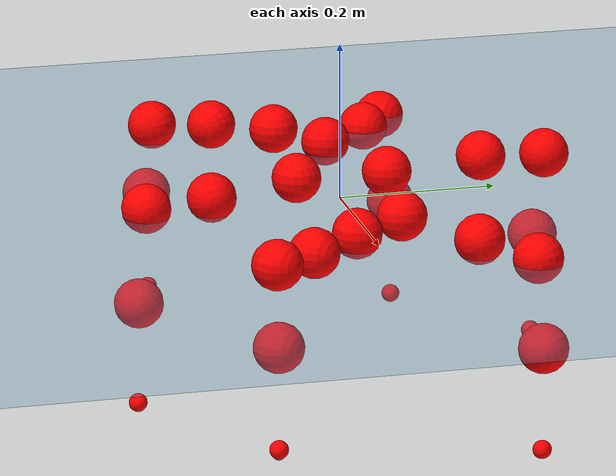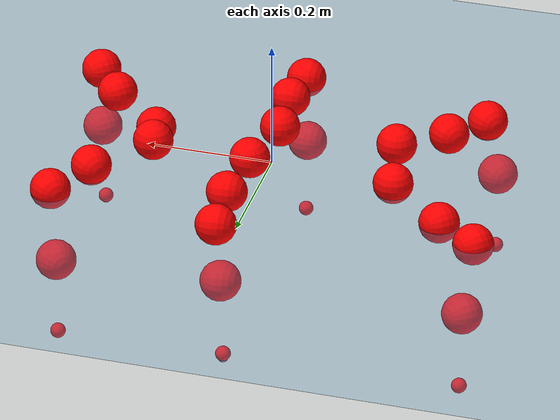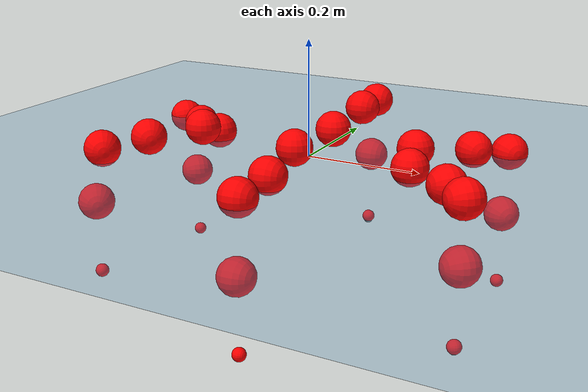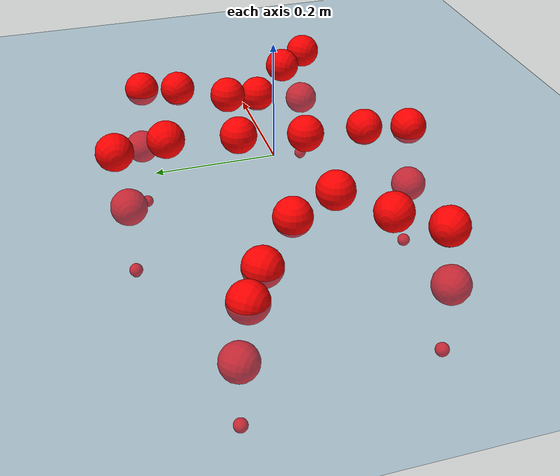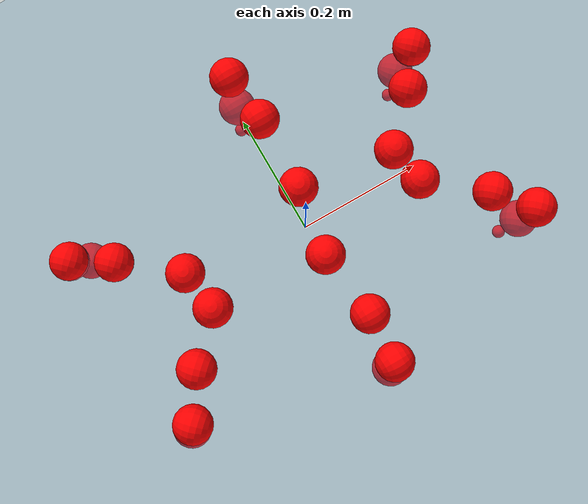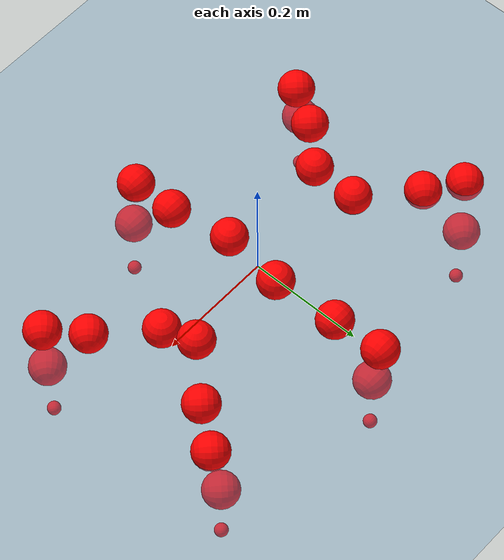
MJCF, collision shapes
<mujoco model="Golem">
  <compiler angle="radian" assetdir="assets" balanceinertia="true" inertiafromgeom="false"/>

  <option timestep="0.005" density="1.2" viscosity="2e-05"/>

  <size nkey="1"/>

  <visual>
    <quality shadowsize="8192"/>
    <map shadowclip="0.5"/>
  </visual>

  <default>
    <default class="/">
      <joint armature="0.01" damping="0.01" frictionloss="0.01"/>
      <geom contype="0" conaffinity="0" group="1" solref="-1000 -80"/>
      <site size="0.01 0.005 0.005" group="5"/>
      <general forcelimited="true" biastype="affine" gainprm="25" biasprm="0 -25 -0.5"/>
      <default class="visual">
        <geom type="mesh" group="2"/>
      </default>
      <default class="collision">
        <geom group="3"/>
      </default>
      <default class="foot">
        <geom size="0.01 0 0" condim="6" group="4" priority="1" solimp="0.015 1 0.01"/>
      </default>
      <default class="reward_collision_sphere">
        <geom group="5" rgba="1 0 0 1"/>
      </default>
    </default>
  </default>

  <asset>
    <texture type="skybox" colorspace="auto" name="//unnamed_texture_0" builtin="gradient" rgb1="0.95 0.95 0.95" rgb2="0.95 0.95 0.95" width="100" height="600"/>
    <texture type="2d" colorspace="auto" name="texplane" builtin="checker" rgb1="0.345 0.575 0.748" rgb2="0.345 0.575 0.748" markrgb="1 1 1" width="512" height="512"/>
    <material name="MatPlane" class="/" texture="texplane" texuniform="true" texrepeat="2 2" specular="0.9"/>
    <mesh name="body" class="/" file="body.stl" scale="0.001 0.001 0.001"/>
    <mesh name="coxa" class="/" file="coxa.stl" scale="0.001 0.001 0.001"/>
    <mesh name="femur" class="/" file="femur.stl" scale="0.001 0.001 0.001"/>
    <mesh name="tibia" class="/" file="tibia.stl" scale="0.001 0.001 0.001"/>
    <mesh name="tarsus" class="/" file="tarsus.stl" scale="0.001 0.001 0.001"/>
  </asset>

  <worldbody>
    <geom name="floor" class="/" size="100 100 0.125" type="plane" group="0" material="MatPlane"/>
    <light name="toplight_shadow" class="/" pos="0 0 5" dir="0.0990148 0.0990148 -0.990148" type="directional" ambient="0.04 0.04 0.04" diffuse="0.55 0.55 0.55" specular="0.12 0.12 0.12"/>
    <light name="toplight_fill" class="/" pos="0 0 5" dir="0.0990148 0.0990148 -0.990148" type="directional" castshadow="false" ambient="0.04 0.04 0.04" diffuse="0.3 0.3 0.3" specular="0.08 0.08 0.08"/>
    <body name="trunk" pos="0.00397712 -0.00430509 0.00545567" quat="0.999996 -0.000788001 -0.00134359 0.00225411">
      <inertial pos="-0.0120262 -0.00548452 0.00045158" quat="0.99894 -0.0343357 -0.0037636 -0.0304128" mass="1.46973" diaginertia="0.0171524 0.00167342 5.74915e-05"/>
      <joint name="//unnamed_joint_0" type="free"/>
      <geom name="//unnamed_geom_1" class="/" pos="0 0 0.0245923" quat="1 0 0 0" type="mesh" rgba="0.9 0.9 0.9 1" mesh="body"/>
      <site name="imu" class="/" pos="0.145209 -0.0191646 0.112197" size="0.00779116"/>
      <camera name="track" class="/" pos="0 -1.4777 0" quat="0.707107 0.707107 0 0" mode="trackcom"/>
      <camera name="ego_camera" class="/" pos="0.157851 0 0.0384255" quat="-0.5 -0.5 0.5 0.5"/>
      <body name="coxa_RR" pos="-0.215922 -0.0629381 0.0331796" quat="0.382693 3.62253e-05 -1.66652e-05 -0.923875">
        <inertial pos="-0.000590807 0.00939891 -0.000373006" quat="0.999999 0.00053339 -0.000929497 0.000429179" mass="0.109911" diaginertia="0.0297947 0.00273756 8.46354e-05"/>
        <joint name="coxa_joint_RR" class="/" pos="0 0 0" axis="0.0657408 -0.0512157 -0.996521" range="-2.92684 3.1347" armature="0.00538538" damping="0.0482494" frictionloss="0.00813009"/>
        <geom name="//unnamed_geom_2" class="/" type="mesh" rgba="0.2 0.2 0.2 1" mesh="coxa"/>
        <geom name="//unnamed_geom_3" class="reward_collision_sphere" size="0.0311646" pos="-0.0364273 0 0"/>
        <body name="femur_RR" pos="0.0582631 0.000236995 -0.0091326" quat="0.502828 -0.501213 0.499905 0.496029">
          <inertial pos="-0.00548589 -0.000609688 0.00973616" quat="0.999983 -0.00484 -0.00315202 0.000550856" mass="0.116877" diaginertia="0.0250985 0.00254495 8.68228e-05"/>
          <joint name="femur_joint_RR" class="/" pos="0 0 0" axis="-0.0682295 0.0143671 -0.997566" stiffness="0.00979475" range="-3.12679 3.00629" armature="0.00782643" damping="0.00967383" frictionloss="0.00463506"/>
          <geom name="//unnamed_geom_4" class="/" type="mesh" rgba="0.9 0.9 0.9 1" mesh="femur"/>
          <geom name="//unnamed_geom_5" class="reward_collision_sphere" size="0.0311646"/>
          <body name="tibia_RR" pos="0.00935245 -0.0807975 0.0165522" quat="-0.000150466 1 0.000166224 -0.000229443">
            <inertial pos="0.00210392 0.0153714 -0.00227457" quat="0.996997 -0.0723157 -0.00418369 0.0273884" mass="0.094354" diaginertia="0.022347 0.00224763 7.97636e-05"/>
            <joint name="tibia_joint_RR" class="/" pos="0 0 0" axis="0.0144503 0.0526774 0.998507" range="-3.3553 3.24971" armature="0.00760609" damping="0" frictionloss="0.0106252"/>
            <geom name="//unnamed_geom_6" class="/" type="mesh" rgba="0.2 0.2 0.2 1" mesh="tibia"/>
            <geom name="//unnamed_geom_7" class="reward_collision_sphere" size="0.0311646"/>
            <body name="tarsus_RR" pos="0.0968522 0.0155315 0.00905466" quat="0.999989 0.000505621 -0.00356131 -0.00313296">
              <inertial pos="0.0731497 0.000896693 0.0109436" quat="0.519145 0.443684 0.4946 0.537591" mass="0.0871312" diaginertia="0.0298295 0.00210457 0.000106838"/>
              <joint name="tarsus_joint_RR" class="/" pos="0 0 0" axis="0.00350471 0.00100392 0.999993" stiffness="0.027176" range="-2.9245 3.22276" armature="0.01056" damping="0" frictionloss="0.00298413"/>
              <geom name="//unnamed_geom_8" class="/" type="mesh" rgba="0.9 0.9 0.9 1" mesh="tarsus"/>
              <geom name="foot_1" class="foot" size="0.00515089" pos="0.135995 0 0" quat="0 -0.707107 0 0.707107"/>
              <geom name="//unnamed_geom_10" class="reward_collision_sphere" size="0.0311646"/>
              <geom name="//unnamed_geom_11" class="reward_collision_sphere" size="0.0116867" pos="0.130531 0 0"/>
              <site name="foot_1" class="foot" pos="0.135995 0 0" quat="0 -0.707107 0 0.707107" size="0.00779116"/>
            </body>
          </body>
        </body>
      </body>
      <body name="coxa_RM" pos="-0.00100536 -0.0889884 0.0262653" quat="0.706928 -0.000609688 -0.00841726 -0.707236">
        <inertial pos="-0.0111901 -0.000836426 0.0134062" quat="0.999997 0.00164968 -0.0011126 0.00115037" mass="0.100513" diaginertia="0.0253324 0.00183116 8.52168e-05"/>
        <joint name="coxa_joint_RM" class="/" pos="0 0 0" axis="-0.0241272 -0.00381588 -0.999702" range="-3.1858 3.14311" armature="0.00265769" damping="0.0355238" frictionloss="0.00501553"/>
        <geom name="//unnamed_geom_12" class="/" type="mesh" rgba="0.2 0.2 0.2 1" mesh="coxa"/>
        <geom name="//unnamed_geom_13" class="reward_collision_sphere" size="0.0311646" pos="-0.0364273 0 0"/>
        <body name="femur_RM" pos="0.0751943 0.0135525 -0.0143895" quat="0.501215 -0.499214 0.499969 0.4996">
          <inertial pos="-0.0152852 0.00991689 -0.000492387" quat="0.999425 0.0191319 -0.0216322 0.0177457" mass="0.110573" diaginertia="0.0366376 0.00261126 0.000117634"/>
          <joint name="femur_joint_RM" class="/" pos="0 0 0" axis="-0.0476974 -0.0325051 -0.998333" range="-3.14553 3.42941" armature="0.00543453" damping="0" frictionloss="0.0114"/>
          <geom name="//unnamed_geom_14" class="/" type="mesh" rgba="0.9 0.9 0.9 1" mesh="femur"/>
          <geom name="//unnamed_geom_15" class="reward_collision_sphere" size="0.0311646"/>
          <body name="tibia_RM" pos="0.0104004 -0.0819955 -0.00402381" quat="-0.000263511 0.999987 -0.00427937 0.00273747">
            <inertial pos="0.0102013 -0.0166067 -0.00243579" quat="0.99877 -0.0137641 0.0261549 -0.0398196" mass="0.0998787" diaginertia="0.0294083 0.00246345 9.60556e-05"/>
            <joint name="tibia_joint_RM" class="/" pos="0 0 0" axis="-0.0150379 -0.0170933 0.999741" stiffness="0.0347677" range="-3.17108 2.93162" armature="0.0102639" damping="0" frictionloss="0.00805904"/>
            <geom name="//unnamed_geom_16" class="/" type="mesh" rgba="0.2 0.2 0.2 1" mesh="tibia"/>
            <geom name="//unnamed_geom_17" class="reward_collision_sphere" size="0.0311646"/>
            <body name="tarsus_RM" pos="0.1233 0.00826859 0.00162165" quat="1 -0.000670777 4.07001e-05 0.000195619">
              <inertial pos="0.0593837 0.00315236 -0.00605952" quat="0.500511 0.497719 0.49575 0.505961" mass="0.0747876" diaginertia="0.0251953 0.00206166 6.67888e-05"/>
              <joint name="tarsus_joint_RM" class="/" pos="0 0 0" axis="0.0107179 0.0261524 0.999601" stiffness="0.0187794" range="-2.89828 3.39595" armature="0.00733164" damping="0.00333732" frictionloss="0.0124951"/>
              <geom name="//unnamed_geom_18" class="/" type="mesh" rgba="0.9 0.9 0.9 1" mesh="tarsus"/>
              <geom name="foot_2" class="foot" size="0.00473074" pos="0.135995 0 0" quat="0 -0.707107 0 0.707107"/>
              <geom name="//unnamed_geom_20" class="reward_collision_sphere" size="0.0311646"/>
              <geom name="//unnamed_geom_21" class="reward_collision_sphere" size="0.0116867" pos="0.130531 0 0"/>
              <site name="foot_2" class="foot" pos="0.135995 0 0" quat="0 -0.707107 0 0.707107" size="0.00779116"/>
            </body>
          </body>
        </body>
      </body>
      <body name="coxa_RF" pos="0.21567 -0.0488273 0.0110602" quat="0.922814 0.000323374 0.00222523 -0.385239">
        <inertial pos="0.00512192 0.0147597 -0.0119289" quat="0.997376 -0.0449819 -0.0512872 0.0242327" mass="0.124942" diaginertia="0.0328837 0.00249972 9.46037e-05"/>
        <joint name="coxa_joint_RF" class="/" pos="0 0 0" axis="-0.0353914 -0.0548185 -0.997869" stiffness="0.000118044" range="-3.44154 2.95836" armature="0.0127177" damping="0.0501407" frictionloss="0.00823436"/>
        <geom name="//unnamed_geom_22" class="/" type="mesh" rgba="0.2 0.2 0.2 1" mesh="coxa"/>
        <geom name="//unnamed_geom_23" class="reward_collision_sphere" size="0.0311646" pos="-0.0364273 0 0"/>
        <body name="femur_RF" pos="0.076902 0.00858884 0.00899216" quat="0.499968 -0.499951 0.500027 0.500053">
          <inertial pos="0.0116002 -0.014629 -0.00182083" quat="0.999542 -0.0267617 0.004661 0.0133413" mass="0.0897314" diaginertia="0.023468 0.00175932 7.27568e-05"/>
          <joint name="femur_joint_RF" class="/" pos="0 0 0" axis="0.0157803 -0.00585814 -0.999858" range="-3.09014 3.3113" armature="0.0076297" damping="0.0220053" frictionloss="0.011147"/>
          <geom name="//unnamed_geom_24" class="/" type="mesh" rgba="0.9 0.9 0.9 1" mesh="femur"/>
          <geom name="//unnamed_geom_25" class="reward_collision_sphere" size="0.0311646"/>
          <body name="tibia_RF" pos="-0.00414565 -0.070895 -0.00799513" quat="-4.93293e-05 1 -0.000188117 -0.00027109">
            <inertial pos="-1.02796e-05 0.000126467 0.0160656" quat="0.997724 0.0474237 -0.00399911 0.0477756" mass="0.0984492" diaginertia="0.0303857 0.00279638 7.6264e-05"/>
            <joint name="tibia_joint_RF" class="/" pos="0 0 0" axis="-0.0319249 0.019322 0.999303" stiffness="0.0180711" range="-3.1133 2.95305" armature="0.00718434" damping="0" frictionloss="0.00408476"/>
            <geom name="//unnamed_geom_26" class="/" type="mesh" rgba="0.2 0.2 0.2 1" mesh="tibia"/>
            <geom name="//unnamed_geom_27" class="reward_collision_sphere" size="0.0311646"/>
            <body name="tarsus_RF" pos="0.10399 -0.000566154 -0.00120674" quat="0.999982 -0.00217241 -0.00369559 -0.00413678">
              <inertial pos="0.0812938 -0.00467783 -0.00622913" quat="0.497248 0.504272 0.496682 0.501759" mass="0.0827911" diaginertia="0.0248851 0.00226676 8.77264e-05"/>
              <joint name="tarsus_joint_RF" class="/" pos="0 0 0" axis="0.0443402 0.0217589 0.99878" stiffness="0.036077" range="-3.38606 3.14786" armature="0.0066398" damping="0.0368084" frictionloss="0.00609376"/>
              <geom name="//unnamed_geom_28" class="/" type="mesh" rgba="0.9 0.9 0.9 1" mesh="tarsus"/>
              <geom name="foot_3" class="foot" size="0.00764477" pos="0.135995 0 0" quat="0 -0.707107 0 0.707107"/>
              <geom name="//unnamed_geom_30" class="reward_collision_sphere" size="0.0311646"/>
              <geom name="//unnamed_geom_31" class="reward_collision_sphere" size="0.0116867" pos="0.130531 0 0"/>
              <site name="foot_3" class="foot" pos="0.135995 0 0" quat="0 -0.707107 0 0.707107" size="0.00779116"/>
            </body>
          </body>
        </body>
      </body>
      <body name="coxa_LR" pos="-0.228389 0.0602354 0.00760723" quat="0.381384 0.00125534 -0.00238083 0.924413">
        <inertial pos="0.0115353 0.0122602 0.00023322" quat="0.998215 -0.0408843 -0.00334677 0.0433946" mass="0.102611" diaginertia="0.0240034 0.00288323 0.000115328"/>
        <joint name="coxa_joint_LR" class="/" pos="0 0 0" axis="-0.000653884 -0.00275095 -0.999996" range="-2.94735 2.97338" armature="0.0047474" damping="0.0186868" frictionloss="0.00701128"/>
        <geom name="//unnamed_geom_32" class="/" type="mesh" rgba="0.2 0.2 0.2 1" mesh="coxa"/>
        <geom name="//unnamed_geom_33" class="reward_collision_sphere" size="0.0311646" pos="-0.0364273 0 0"/>
        <body name="femur_LR" pos="0.078359 0.0110731 -0.0114399" quat="0.500825 -0.500967 0.50071 0.497489">
          <inertial pos="-0.00328156 0.016802 -0.00439553" quat="0.999992 0.0021061 0.00145735 -0.00316078" mass="0.0945929" diaginertia="0.031111 0.00187747 9.9377e-05"/>
          <joint name="femur_joint_LR" class="/" pos="0 0 0" axis="-0.00435323 0.00527009 0.999977" stiffness="0.0231375" range="-3.42004 3.12624" armature="0.00890439" damping="0.0889227" frictionloss="0.00765911"/>
          <geom name="//unnamed_geom_34" class="/" type="mesh" rgba="0.9 0.9 0.9 1" mesh="femur"/>
          <geom name="//unnamed_geom_35" class="reward_collision_sphere" size="0.0311646"/>
          <body name="tibia_LR" pos="0.00515157 -0.0699229 0.0162726" quat="0.00393272 0.999989 -0.00101972 0.00235203">
            <inertial pos="-0.00970061 0.0122045 0.00953208" quat="0.997718 0.0119621 -0.0664191 -0.00184636" mass="0.0847423" diaginertia="0.028632 0.00231876 7.90393e-05"/>
            <joint name="tibia_joint_LR" class="/" pos="0 0 0" axis="-0.0337381 -0.00217242 -0.999428" range="-3.32678 2.8538" armature="0.00536169" damping="0.0542353" frictionloss="0.00809906"/>
            <geom name="//unnamed_geom_36" class="/" type="mesh" rgba="0.2 0.2 0.2 1" mesh="tibia"/>
            <geom name="//unnamed_geom_37" class="reward_collision_sphere" size="0.0311646"/>
            <body name="tarsus_LR" pos="0.117289 -7.2224e-05 0.016194" quat="0.999983 0.000248805 -0.00283188 -0.00501309">
              <inertial pos="0.0769695 0.015342 0.0140361" quat="0.469295 0.497236 0.516593 0.515413" mass="0.0926816" diaginertia="0.0237835 0.00244526 9.81109e-05"/>
              <joint name="tarsus_joint_LR" class="/" pos="0 0 0" axis="-0.0396759 -0.0582167 -0.997515" stiffness="0.0682158" range="-2.98116 3.33722" armature="0.012451" damping="0.0648736" frictionloss="0.0116534"/>
              <geom name="//unnamed_geom_38" class="/" type="mesh" rgba="0.9 0.9 0.9 1" mesh="tarsus"/>
              <geom name="foot_4" class="foot" size="0.00296423" pos="0.135995 0 0" quat="0.707107 0 -0.707107 0"/>
              <geom name="//unnamed_geom_40" class="reward_collision_sphere" size="0.0311646"/>
              <geom name="//unnamed_geom_41" class="reward_collision_sphere" size="0.0116867" pos="0.130531 0 0"/>
              <site name="foot_4" class="foot" pos="0.135995 0 0" quat="0.707107 0 -0.707107 0" size="0.00779116"/>
            </body>
          </body>
        </body>
      </body>
      <body name="coxa_LM" pos="0.0159713 0.0958076 0.0317546" quat="0.707164 -2.79449e-05 7.17847e-05 0.707049">
        <inertial pos="0.0069556 0.0114377 -0.00713869" quat="0.997682 -0.0198308 -0.0650216 0.003158" mass="0.0877795" diaginertia="0.0194725 0.00174573 6.75431e-05"/>
        <joint name="coxa_joint_LM" class="/" pos="0 0 0" axis="-0.0301133 -0.0755675 -0.996686" stiffness="0.0353504" range="-3.16265 3.03483" armature="0.00555115" damping="0" frictionloss="0.00385904"/>
        <geom name="//unnamed_geom_42" class="/" type="mesh" rgba="0.2 0.2 0.2 1" mesh="coxa"/>
        <geom name="//unnamed_geom_43" class="reward_collision_sphere" size="0.0311646" pos="-0.0364273 0 0"/>
        <body name="femur_LM" pos="0.0851046 -0.00115097 0.0115688" quat="0.500366 -0.499868 0.499719 0.500047">
          <inertial pos="-0.0113607 0.00382373 0.00560201" quat="0.998227 -0.0498649 0.0003745 -0.0325139" mass="0.0723923" diaginertia="0.0264173 0.00151075 7.67691e-05"/>
          <joint name="femur_joint_LM" class="/" pos="0 0 0" axis="0.000991171 0.00225288 0.999997" range="-3.25866 3.08801" armature="0.00865382" damping="0" frictionloss="0.0121034"/>
          <geom name="//unnamed_geom_44" class="/" type="mesh" rgba="0.9 0.9 0.9 1" mesh="femur"/>
          <geom name="//unnamed_geom_45" class="reward_collision_sphere" size="0.0311646"/>
          <body name="tibia_LM" pos="0.00512116 -0.0850266 0.00771329" quat="0.00297008 0.999979 -0.000242638 0.00575348">
            <inertial pos="-0.0103283 -0.00121664 0.0134196" quat="0.997528 0.0330036 0.0617965 -0.00543229" mass="0.101595" diaginertia="0.0282312 0.00184999 9.416e-05"/>
            <joint name="tibia_joint_LM" class="/" pos="0 0 0" axis="-0.0383774 0.0268087 -0.998904" stiffness="0.0726732" range="-3.13564 3.12464" armature="0.00776795" damping="0" frictionloss="0.0126925"/>
            <geom name="//unnamed_geom_46" class="/" type="mesh" rgba="0.2 0.2 0.2 1" mesh="tibia"/>
            <geom name="//unnamed_geom_47" class="reward_collision_sphere" size="0.0311646"/>
            <body name="tarsus_LM" pos="0.106671 -0.0132467 -0.0013871" quat="0.999977 -0.00390872 0.00554406 2.20649e-05">
              <inertial pos="0.0728391 0.000444155 -0.00924476" quat="0.50615 0.550205 0.452097 0.486512" mass="0.0813197" diaginertia="0.0217626 0.00249151 8.67364e-05"/>
              <joint name="tarsus_joint_LM" class="/" pos="0 0 0" axis="-0.0761056 -0.0248301 -0.996791" range="-3.19646 3.19084" armature="0.00896493" damping="0.0128156" frictionloss="0.00234056"/>
              <geom name="//unnamed_geom_48" class="/" type="mesh" rgba="0.9 0.9 0.9 1" mesh="tarsus"/>
              <geom name="foot_5" class="foot" size="0.00863579" pos="0.135995 0 0" quat="0.707107 0 -0.707107 0"/>
              <geom name="//unnamed_geom_50" class="reward_collision_sphere" size="0.0311646"/>
              <geom name="//unnamed_geom_51" class="reward_collision_sphere" size="0.0116867" pos="0.130531 0 0"/>
              <site name="foot_5" class="foot" pos="0.135995 0 0" quat="0.707107 0 -0.707107 0" size="0.00779116"/>
            </body>
          </body>
        </body>
      </body>
      <body name="coxa_LF" pos="0.201837 0.0629349 0.0247125" quat="0.922954 -0.00016452 0.000285804 0.384911">
        <inertial pos="-0.000251284 -0.000147688 -0.013451" quat="0.998271 -0.0146177 -0.0568952 -0.00217257" mass="0.109017" diaginertia="0.0317204 0.00184423 9.69214e-05"/>
        <joint name="coxa_joint_LF" class="/" pos="0 0 0" axis="-0.00539251 0.0632529 -0.997983" range="-3.05882 3.1319" armature="0.013229" damping="0.0232458" frictionloss="0.00130891"/>
        <geom name="//unnamed_geom_52" class="/" type="mesh" rgba="0.2 0.2 0.2 1" mesh="coxa"/>
        <geom name="//unnamed_geom_53" class="reward_collision_sphere" size="0.0311646" pos="-0.0364273 0 0"/>
        <body name="femur_LF" pos="0.0715051 0.00112513 -0.0120972" quat="0.50052 -0.501289 0.499447 0.49874">
          <inertial pos="0.0162843 -3.78428e-05 -0.0167492" quat="0.999928 0.00590862 0.00438078 -0.00951783" mass="0.1024" diaginertia="0.0212013 0.00206697 8.20405e-05"/>
          <joint name="femur_joint_LF" class="/" pos="0 0 0" axis="0.000523446 0.000334562 1" range="-3.17133 3.18019" armature="0.00384507" damping="0" frictionloss="0.00572527"/>
          <geom name="//unnamed_geom_54" class="/" type="mesh" rgba="0.9 0.9 0.9 1" mesh="femur"/>
          <geom name="//unnamed_geom_55" class="reward_collision_sphere" size="0.0311646"/>
          <body name="tibia_LF" pos="0.0143554 -0.0754191 0.00997861" quat="0.000627944 0.999988 -0.00140367 -0.00475517">
            <inertial pos="0.00792342 0.0161387 0.000646044" quat="0.999998 -0.00168851 -0.000353875 0.00102399" mass="0.103909" diaginertia="0.0382233 0.00265644 9.30135e-05"/>
            <joint name="tibia_joint_LF" class="/" pos="0 0 0" axis="0.000859581 0.00614336 -0.999981" stiffness="0.0315138" range="-3.12461 3.0717" armature="0.00290995" damping="0.0549509" frictionloss="0.00738434"/>
            <geom name="//unnamed_geom_56" class="/" type="mesh" rgba="0.2 0.2 0.2 1" mesh="tibia"/>
            <geom name="//unnamed_geom_57" class="reward_collision_sphere" size="0.0311646"/>
            <body name="tarsus_LF" pos="0.119413 0.000661184 -0.0154023" quat="0.999998 0.000380244 0.00171028 -0.000985062">
              <inertial pos="0.0689713 -0.00950707 0.00392432" quat="0.483623 0.543677 0.492468 0.477492" mass="0.130955" diaginertia="0.0288369 0.00306377 9.0726e-05"/>
              <joint name="tarsus_joint_LF" class="/" pos="0 0 0" axis="-0.00194489 0.0385324 -0.999255" range="-3.23792 3.12468" armature="0.00238173" damping="0.0677471" frictionloss="0.0139503"/>
              <geom name="//unnamed_geom_58" class="/" type="mesh" rgba="0.9 0.9 0.9 1" mesh="tarsus"/>
              <geom name="foot_6" class="foot" size="0.0057005" pos="0.135995 0 0" quat="0.707107 0 -0.707107 0"/>
              <geom name="//unnamed_geom_60" class="reward_collision_sphere" size="0.0311646"/>
              <geom name="//unnamed_geom_61" class="reward_collision_sphere" size="0.0116867" pos="0.130531 0 0"/>
              <site name="foot_6" class="foot" pos="0.135995 0 0" quat="0.707107 0 -0.707107 0" size="0.00779116"/>
            </body>
          </body>
        </body>
      </body>
    </body>
  </worldbody>

  <contact>
    <pair class="/" geom1="floor" geom2="foot_1" name="//unnamed_contact_0"/>
    <pair class="/" geom1="floor" geom2="foot_2" name="//unnamed_contact_1"/>
    <pair class="/" geom1="floor" geom2="foot_3" name="//unnamed_contact_2"/>
    <pair class="/" geom1="floor" geom2="foot_4" name="//unnamed_contact_3"/>
    <pair class="/" geom1="floor" geom2="foot_5" name="//unnamed_contact_4"/>
    <pair class="/" geom1="floor" geom2="foot_6" name="//unnamed_contact_5"/>
  </contact>

  <actuator>
    <general name="coxa_joint_RR" class="/" joint="coxa_joint_RR" forcerange="-7.17335 7.17335" gainprm="12.8965" biasprm="0 -12.8965 -0.452755"/>
    <general name="femur_joint_RR" class="/" joint="femur_joint_RR" forcerange="-6.28182 6.28182" gainprm="12.8965" biasprm="0 -12.8965 -0.452755"/>
    <general name="tibia_joint_RR" class="/" joint="tibia_joint_RR" forcerange="-6.97765 6.97765" gainprm="12.8965" biasprm="0 -12.8965 -0.452755"/>
    <general name="tarsus_joint_RR" class="/" joint="tarsus_joint_RR" forcerange="-2.76653 2.76653" gainprm="12.8965" biasprm="0 -12.8965 -0.452755"/>
    <general name="coxa_joint_RM" class="/" joint="coxa_joint_RM" forcerange="-5.0633 5.0633" gainprm="12.8965" biasprm="0 -12.8965 -0.452755"/>
    <general name="femur_joint_RM" class="/" joint="femur_joint_RM" forcerange="-5.575 5.575" gainprm="12.8965" biasprm="0 -12.8965 -0.452755"/>
    <general name="tibia_joint_RM" class="/" joint="tibia_joint_RM" forcerange="-5.67271 5.67271" gainprm="12.8965" biasprm="0 -12.8965 -0.452755"/>
    <general name="tarsus_joint_RM" class="/" joint="tarsus_joint_RM" forcerange="-2.40678 2.40678" gainprm="12.8965" biasprm="0 -12.8965 -0.452755"/>
    <general name="coxa_joint_RF" class="/" joint="coxa_joint_RF" forcerange="-3.71448 3.71448" gainprm="12.8965" biasprm="0 -12.8965 -0.452755"/>
    <general name="femur_joint_RF" class="/" joint="femur_joint_RF" forcerange="-8.8459 8.8459" gainprm="12.8965" biasprm="0 -12.8965 -0.452755"/>
    <general name="tibia_joint_RF" class="/" joint="tibia_joint_RF" forcerange="-3.44645 3.44645" gainprm="12.8965" biasprm="0 -12.8965 -0.452755"/>
    <general name="tarsus_joint_RF" class="/" joint="tarsus_joint_RF" forcerange="-8.05329 8.05329" gainprm="12.8965" biasprm="0 -12.8965 -0.452755"/>
    <general name="coxa_joint_LR" class="/" joint="coxa_joint_LR" forcerange="-7.79833 7.79833" gainprm="12.8965" biasprm="0 -12.8965 -0.452755"/>
    <general name="femur_joint_LR" class="/" joint="femur_joint_LR" forcerange="-5.38663 5.38663" gainprm="12.8965" biasprm="0 -12.8965 -0.452755"/>
    <general name="tibia_joint_LR" class="/" joint="tibia_joint_LR" forcerange="-5.87651 5.87651" gainprm="12.8965" biasprm="0 -12.8965 -0.452755"/>
    <general name="tarsus_joint_LR" class="/" joint="tarsus_joint_LR" forcerange="-7.81419 7.81419" gainprm="12.8965" biasprm="0 -12.8965 -0.452755"/>
    <general name="coxa_joint_LM" class="/" joint="coxa_joint_LM" forcerange="-6.5948 6.5948" gainprm="12.8965" biasprm="0 -12.8965 -0.452755"/>
    <general name="femur_joint_LM" class="/" joint="femur_joint_LM" forcerange="-7.9245 7.9245" gainprm="12.8965" biasprm="0 -12.8965 -0.452755"/>
    <general name="tibia_joint_LM" class="/" joint="tibia_joint_LM" forcerange="-7.24858 7.24858" gainprm="12.8965" biasprm="0 -12.8965 -0.452755"/>
    <general name="tarsus_joint_LM" class="/" joint="tarsus_joint_LM" forcerange="-6.68457 6.68457" gainprm="12.8965" biasprm="0 -12.8965 -0.452755"/>
    <general name="coxa_joint_LF" class="/" joint="coxa_joint_LF" forcerange="-8.57261 8.57261" gainprm="12.8965" biasprm="0 -12.8965 -0.452755"/>
    <general name="femur_joint_LF" class="/" joint="femur_joint_LF" forcerange="-7.80402 7.80402" gainprm="12.8965" biasprm="0 -12.8965 -0.452755"/>
    <general name="tibia_joint_LF" class="/" joint="tibia_joint_LF" forcerange="-3.58699 3.58699" gainprm="12.8965" biasprm="0 -12.8965 -0.452755"/>
    <general name="tarsus_joint_LF" class="/" joint="tarsus_joint_LF" forcerange="-7.16877 7.16877" gainprm="12.8965" biasprm="0 -12.8965 -0.452755"/>
  </actuator>

  <sensor>
    <gyro site="imu" name="imu_angular_velocity"/>
    <velocimeter site="imu" name="imu_linear_velocity"/>
    <framelinvel objtype="site" objname="foot_1" name="foot_1_global_linear_velocity"/>
    <framelinvel objtype="site" objname="foot_2" name="foot_2_global_linear_velocity"/>
    <framelinvel objtype="site" objname="foot_3" name="foot_3_global_linear_velocity"/>
    <framelinvel objtype="site" objname="foot_4" name="foot_4_global_linear_velocity"/>
    <framelinvel objtype="site" objname="foot_5" name="foot_5_global_linear_velocity"/>
    <framelinvel objtype="site" objname="foot_6" name="foot_6_global_linear_velocity"/>
  </sensor>

  <keyframe>
    <key name="home" qpos="0 0 0.1457 1 0 0 0 0 0 0 0 0 0 0 0 0 0 0 0 0 0 0 0 0 0 0 0 0 0 0 0"/>
  </keyframe>
</mujoco>
